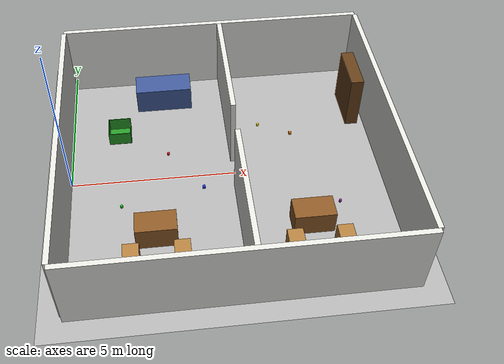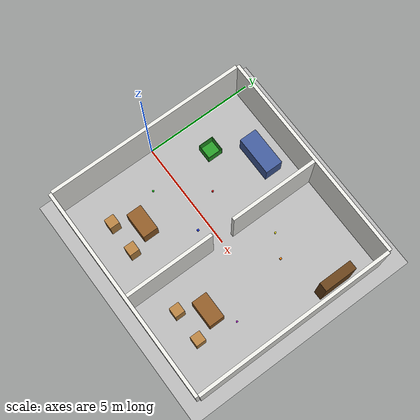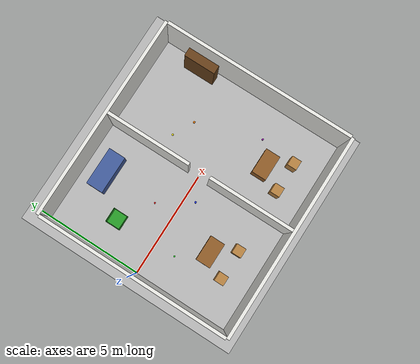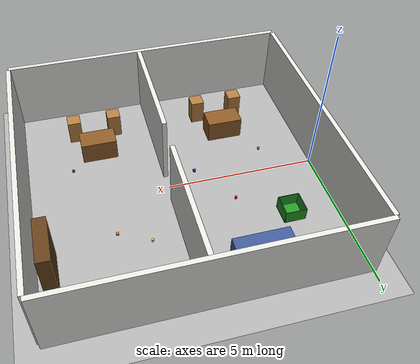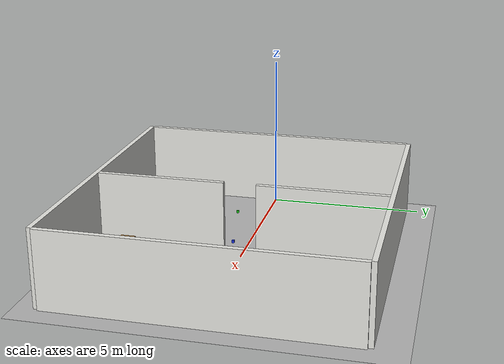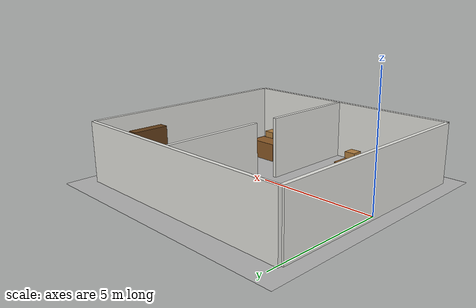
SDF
<?xml version="1.0"?>
<sdf version="1.9">
<world name="home">

  <physics name="4ms" type="ignored">
    <max_step_size>0.004</max_step_size>
    <real_time_factor>1.0</real_time_factor>
    <gravity>0 0 -9.81</gravity>
  </physics>

  <!--
       MANDATORY WORLD PLUGINS
       Filename pattern: "ignition-gazebo-*-system"
       Ignition's plugin loader finds libignition-gazebo6-*-system.so
   -->
  <plugin filename="ignition-gazebo-physics-system"
          name="ignition::gazebo::systems::Physics"/>

  <plugin filename="ignition-gazebo-user-commands-system"
          name="ignition::gazebo::systems::UserCommands"/>

  <plugin filename="ignition-gazebo-scene-broadcaster-system"
          name="ignition::gazebo::systems::SceneBroadcaster"/>

  <!-- SENSORS PLUGIN -->
  <plugin filename="ignition-gazebo-sensors-system"
          name="ignition::gazebo::systems::Sensors">
    <render_engine>ogre2</render_engine>
  </plugin>

  <!-- LIGHTING-->
  <light name="sun" type="directional">
    <cast_shadows>true</cast_shadows>
    <pose>0 0 10 0 0 0</pose>
    <diffuse>0.85 0.85 0.85 1</diffuse>
    <specular>0.2 0.2 0.2 1</specular>
    <direction>-0.5 0.1 -0.9</direction>
  </light>

  <!-- Softer ambient fill light to avoid pitch-black shadows -->
  <light name="ambient_fill" type="directional">
    <cast_shadows>false</cast_shadows>
    <pose>0 0 10 0 0 0</pose>
    <diffuse>0.3 0.3 0.35 1</diffuse>
    <specular>0.0 0.0 0.0 1</specular>
    <direction>0.5 -0.1 -0.5</direction>
  </light>

  <!-- GROUND PLANE
       A static model with plane collision + visual geometry.
       IMPORTANT: We define friction here, not relying on the default-->
  <model name="ground_plane">
    <static>true</static>
    <link name="link">

      <collision name="collision">
        <geometry>
          <!-- A plane is infinite in collision but we give it a visual size -->
          <plane>
            <normal>0 0 1</normal>   <!-- pointing up = horizontal floor -->
            <size>30 30</size>
          </plane>
        </geometry>
        <surface>
          <friction>
            <ode>
              <mu>0.8</mu>
              <mu2>0.8</mu2>
            </ode>
          </friction>
          <contact>
            <ode>
              <!-- Stiffness and damping for the contact model.
                   Without these, objects may bounce or sink into the floor. -->
              <kp>1e6</kp>
              <kd>100.0</kd>
            </ode>
          </contact>
        </surface>
      </collision>

      <visual name="visual">
        <geometry>
          <plane>
            <normal>0 0 1</normal>
            <size>30 30</size>
          </plane>
        </geometry>
        <material>
          <ambient>0.7 0.7 0.7 1</ambient>
          <diffuse>0.7 0.7 0.7 1</diffuse>
        </material>
      </visual>

    </link>
  </model>

  <!-- Reusable wall material -->
  <!-- (SDF doesn't support macros — we repeat the material block.
       In Phase 3 we'll have more walls but the structure is the same.) -->

  <!-- South wall (runs along X axis at y = -4.5) -->
  <model name="wall_south">
    <static>true</static>
    <!-- pose: cx cy cz roll pitch yaw — center of the box -->
    <pose>4.75 -4.575 1.2 0 0 0</pose>
    <link name="link">
      <collision name="collision">
        <geometry><box><size>9.65 0.15 2.4</size></box></geometry>
        <surface><friction><ode><mu>0.6</mu><mu2>0.6</mu2></ode></friction></surface>
      </collision>
      <visual name="visual">
        <geometry><box><size>9.65 0.15 2.4</size></box></geometry>
        <material><ambient>0.9 0.9 0.88 1</ambient><diffuse>0.9 0.9 0.88 1</diffuse></material>
      </visual>
    </link>
  </model>

  <!-- North wall (runs along X axis at y = +4.5) -->
  <model name="wall_north">
    <static>true</static>
    <pose>4.75 4.575 1.2 0 0 0</pose>
    <link name="link">
      <collision name="collision">
        <geometry><box><size>9.65 0.15 2.4</size></box></geometry>
        <surface><friction><ode><mu>0.6</mu><mu2>0.6</mu2></ode></friction></surface>
      </collision>
      <visual name="visual">
        <geometry><box><size>9.65 0.15 2.4</size></box></geometry>
        <material><ambient>0.9 0.9 0.88 1</ambient><diffuse>0.9 0.9 0.88 1</diffuse></material>
      </visual>
    </link>
  </model>

  <!-- West wall (runs along Y axis at x = -0.075) -->
  <model name="wall_west">
    <static>true</static>
    <pose>-0.075 0 1.2 0 0 0</pose>
    <link name="link">
      <collision name="collision">
        <geometry><box><size>0.15 9.0 2.4</size></box></geometry>
        <surface><friction><ode><mu>0.6</mu><mu2>0.6</mu2></ode></friction></surface>
      </collision>
      <visual name="visual">
        <geometry><box><size>0.15 9.0 2.4</size></box></geometry>
        <material><ambient>0.9 0.9 0.88 1</ambient><diffuse>0.9 0.9 0.88 1</diffuse></material>
      </visual>
    </link>
  </model>

  <!-- East wall (runs along Y axis at x = 9.575) -->
  <model name="wall_east">
    <static>true</static>
    <pose>9.575 0 1.2 0 0 0</pose>
    <link name="link">
      <collision name="collision">
        <geometry><box><size>0.15 9.0 2.4</size></box></geometry>
        <surface><friction><ode><mu>0.6</mu><mu2>0.6</mu2></ode></friction></surface>
      </collision>
      <visual name="visual">
        <geometry><box><size>0.15 9.0 2.4</size></box></geometry>
        <material><ambient>0.9 0.9 0.88 1</ambient><diffuse>0.9 0.9 0.88 1</diffuse></material>
      </visual>
    </link>
  </model>

  <model name="divider_south">
    <static>true</static>
    <pose>5.0 -2.5 1.2 0 0 0</pose>
    <link name="link">
      <collision name="collision">
        <geometry><box><size>0.15 4.0 2.4</size></box></geometry>
        <surface><friction><ode><mu>0.6</mu><mu2>0.6</mu2></ode></friction></surface>
      </collision>
      <visual name="visual">
        <geometry><box><size>0.15 4.0 2.4</size></box></geometry>
        <material><ambient>0.9 0.9 0.88 1</ambient><diffuse>0.9 0.9 0.88 1</diffuse></material>
      </visual>
    </link>
  </model>

  <model name="divider_north">
    <static>true</static>
    <pose>5.0 2.5 1.2 0 0 0</pose>
    <link name="link">
      <collision name="collision">
        <geometry><box><size>0.15 4.0 2.4</size></box></geometry>
        <surface><friction><ode><mu>0.6</mu><mu2>0.6</mu2></ode></friction></surface>
      </collision>
      <visual name="visual">
        <geometry><box><size>0.15 4.0 2.4</size></box></geometry>
        <material><ambient>0.9 0.9 0.88 1</ambient><diffuse>0.9 0.9 0.88 1</diffuse></material>
      </visual>
    </link>
  </model>

  <!-- Dining table in south half of Room 1 -->
  <model name="r1_table">
    <static>true</static>
    <pose>2.5 -2.2 0.375 0 0 0</pose>
    <link name="link">
      <collision name="collision">
        <geometry><box><size>1.2 0.7 0.75</size></box></geometry>
      </collision>
      <visual name="visual">
        <geometry><box><size>1.2 0.7 0.75</size></box></geometry>
        <!-- Wood-brown color -->
        <material><ambient>0.55 0.35 0.15 1</ambient><diffuse>0.55 0.35 0.15 1</diffuse></material>
      </visual>
    </link>
  </model>

  <model name="r1_chair_a">
    <static>true</static>
    <pose>1.8 -3.2 0.425 0 0 0</pose>
    <link name="link">
      <collision name="collision">
        <geometry><box><size>0.45 0.45 0.85</size></box></geometry>
      </collision>
      <visual name="visual">
        <geometry><box><size>0.45 0.45 0.85</size></box></geometry>
        <material><ambient>0.7 0.5 0.25 1</ambient><diffuse>0.7 0.5 0.25 1</diffuse></material>
      </visual>
    </link>
  </model>

  <model name="r1_chair_b">
    <static>true</static>
    <pose>3.2 -3.2 0.425 0 0 0</pose>
    <link name="link">
      <collision name="collision">
        <geometry><box><size>0.45 0.45 0.85</size></box></geometry>
      </collision>
      <visual name="visual">
        <geometry><box><size>0.45 0.45 0.85</size></box></geometry>
        <material><ambient>0.7 0.5 0.25 1</ambient><diffuse>0.7 0.5 0.25 1</diffuse></material>
      </visual>
    </link>
  </model>

  <!-- Couch in north half of Room 1 — placed against north wall -->
  <model name="r1_couch">
    <static>true</static>
    <pose>3.0 3.5 0.425 0 0 0</pose>
    <link name="link">
      <collision name="collision">
        <!-- Couch is wide (along X) and shallow (Y), tall (Z) -->
        <geometry><box><size>1.8 0.8 0.85</size></box></geometry>
      </collision>
      <visual name="visual">
        <geometry><box><size>1.8 0.8 0.85</size></box></geometry>
        <!-- Blue-grey upholstery -->
        <material><ambient>0.25 0.35 0.6 1</ambient><diffuse>0.25 0.35 0.6 1</diffuse></material>
      </visual>
    </link>
  </model>

  <model name="r2_table">
    <static>true</static>
    <pose>7.0 -2.2 0.375 0 0 0</pose>
    <link name="link">
      <collision name="collision">
        <geometry><box><size>1.2 0.7 0.75</size></box></geometry>
      </collision>
      <visual name="visual">
        <geometry><box><size>1.2 0.7 0.75</size></box></geometry>
        <material><ambient>0.55 0.35 0.15 1</ambient><diffuse>0.55 0.35 0.15 1</diffuse></material>
      </visual>
    </link>
  </model>

  <model name="r2_chair_a">
    <static>true</static>
    <pose>6.3 -3.2 0.425 0 0 0</pose>
    <link name="link">
      <collision name="collision">
        <geometry><box><size>0.45 0.45 0.85</size></box></geometry>
      </collision>
      <visual name="visual">
        <geometry><box><size>0.45 0.45 0.85</size></box></geometry>
        <material><ambient>0.7 0.5 0.25 1</ambient><diffuse>0.7 0.5 0.25 1</diffuse></material>
      </visual>
    </link>
  </model>

  <model name="r2_chair_b">
    <static>true</static>
    <pose>7.7 -3.2 0.425 0 0 0</pose>
    <link name="link">
      <collision name="collision">
        <geometry><box><size>0.45 0.45 0.85</size></box></geometry>
      </collision>
      <visual name="visual">
        <geometry><box><size>0.45 0.45 0.85</size></box></geometry>
        <material><ambient>0.7 0.5 0.25 1</ambient><diffuse>0.7 0.5 0.25 1</diffuse></material>
      </visual>
    </link>
  </model>

  <!-- Shelf in Room 2 — against the east wall (x ≈ 9.5) -->
  <model name="r2_shelf">
    <static>true</static>
    <!-- x=9.1: shelf east face at 9.1+0.2=9.3, 0.2m from east wall interior face ✓ -->
    <pose>9.1 2.5 0.9 0 0 0</pose>
    <link name="link">
      <collision name="collision">
        <!-- Depth 0.4m (X), Width 1.5m (Y), Height 1.8m (Z) -->
        <geometry><box><size>0.4 1.5 1.8</size></box></geometry>
      </collision>
      <visual name="visual">
        <geometry><box><size>0.4 1.5 1.8</size></box></geometry>
        <!-- Dark wood -->
        <material><ambient>0.4 0.25 0.1 1</ambient><diffuse>0.4 0.25 0.1 1</diffuse></material>
      </visual>
    </link>
  </model>

  <model name="box_floor">
    <static>true</static>
    <pose>1.5 2.0 0.01 0 0 0</pose>
    <link name="link">
      <collision name="collision">
        <geometry><box><size>0.70 0.70 0.02</size></box></geometry>
      </collision>
      <visual name="visual">
        <geometry><box><size>0.70 0.70 0.02</size></box></geometry>
        <material><ambient>0.15 0.6 0.15 1</ambient><diffuse>0.15 0.6 0.15 1</diffuse></material>
      </visual>
    </link>
  </model>

  <model name="box_wall_north">
    <static>true</static>
    <pose>1.5 2.34 0.225 0 0 0</pose>
    <link name="link">
      <collision name="collision">
        <geometry><box><size>0.70 0.02 0.45</size></box></geometry>
      </collision>
      <visual name="visual">
        <geometry><box><size>0.70 0.02 0.45</size></box></geometry>
        <material><ambient>0.15 0.6 0.15 1</ambient><diffuse>0.15 0.6 0.15 1</diffuse></material>
      </visual>
    </link>
  </model>

  <model name="box_wall_south">
    <static>true</static>
    <pose>1.5 1.66 0.225 0 0 0</pose>
    <link name="link">
      <collision name="collision">
        <geometry><box><size>0.70 0.02 0.45</size></box></geometry>
      </collision>
      <visual name="visual">
        <geometry><box><size>0.70 0.02 0.45</size></box></geometry>
        <material><ambient>0.15 0.6 0.15 1</ambient><diffuse>0.15 0.6 0.15 1</diffuse></material>
      </visual>
    </link>
  </model>

  <model name="box_wall_east">
    <static>true</static>
    <pose>1.84 2.0 0.225 0 0 0</pose>
    <link name="link">
      <collision name="collision">
        <geometry><box><size>0.02 0.70 0.45</size></box></geometry>
      </collision>
      <visual name="visual">
        <geometry><box><size>0.02 0.70 0.45</size></box></geometry>
        <material><ambient>0.15 0.6 0.15 1</ambient><diffuse>0.15 0.6 0.15 1</diffuse></material>
      </visual>
    </link>
  </model>

  <model name="box_wall_west">
    <static>true</static>
    <pose>1.16 2.0 0.225 0 0 0</pose>
    <link name="link">
      <collision name="collision">
        <geometry><box><size>0.02 0.70 0.45</size></box></geometry>
      </collision>
      <visual name="visual">
        <geometry><box><size>0.02 0.70 0.45</size></box></geometry>
        <material><ambient>0.15 0.6 0.15 1</ambient><diffuse>0.15 0.6 0.15 1</diffuse></material>
      </visual>
    </link>
  </model>

  <!-- Room 1 objects -->
  <model name="obj_red">
    <pose>3.0 1.0 0.04 0 0 0</pose>
    <link name="link">
      <inertial>
        <mass>0.3</mass>
        <inertia><ixx>0.000280</ixx><iyy>0.000280</iyy><izz>0.000240</izz>
                 <ixy>0</ixy><ixz>0</ixz><iyz>0</iyz></inertia>
      </inertial>
      <collision name="collision">
        <geometry><cylinder><radius>0.04</radius><length>0.08</length></cylinder></geometry>
        <surface>
          <friction><ode><mu>0.5</mu><mu2>0.5</mu2></ode></friction>
          <contact><ode><kp>1e5</kp><kd>10</kd></ode></contact>
        </surface>
      </collision>
      <visual name="visual">
        <geometry><cylinder><radius>0.04</radius><length>0.08</length></cylinder></geometry>
        <material><ambient>0.9 0.1 0.1 1</ambient><diffuse>0.9 0.1 0.1 1</diffuse></material>
      </visual>
    </link>
  </model>

  <model name="obj_green">
    <pose>1.5 -1.0 0.04 0 0 0</pose>
    <link name="link">
      <inertial>
        <mass>0.3</mass>
        <inertia><ixx>0.000280</ixx><iyy>0.000280</iyy><izz>0.000240</izz>
                 <ixy>0</ixy><ixz>0</ixz><iyz>0</iyz></inertia>
      </inertial>
      <collision name="collision">
        <geometry><cylinder><radius>0.04</radius><length>0.08</length></cylinder></geometry>
        <surface>
          <friction><ode><mu>0.5</mu><mu2>0.5</mu2></ode></friction>
          <contact><ode><kp>1e5</kp><kd>10</kd></ode></contact>
        </surface>
      </collision>
      <visual name="visual">
        <geometry><cylinder><radius>0.04</radius><length>0.08</length></cylinder></geometry>
        <material><ambient>0.1 0.8 0.1 1</ambient><diffuse>0.1 0.8 0.1 1</diffuse></material>
      </visual>
    </link>
  </model>

  <!-- Blue box — near doorway approach path -->
  <model name="obj_blue">
    <!-- Box cube: z=0.04 = half of 0.08m side length -->
    <pose>4.0 -0.5 0.04 0 0 0</pose>
    <link name="link">
      <inertial>
        <mass>0.3</mass>
        <inertia><ixx>0.000320</ixx><iyy>0.000320</iyy><izz>0.000320</izz>
                 <ixy>0</ixy><ixz>0</ixz><iyz>0</iyz></inertia>
      </inertial>
      <collision name="collision">
        <geometry><box><size>0.08 0.08 0.08</size></box></geometry>
        <surface>
          <friction><ode><mu>0.5</mu><mu2>0.5</mu2></ode></friction>
          <contact><ode><kp>1e5</kp><kd>10</kd></ode></contact>
        </surface>
      </collision>
      <visual name="visual">
        <geometry><box><size>0.08 0.08 0.08</size></box></geometry>
        <material><ambient>0.1 0.2 0.9 1</ambient><diffuse>0.1 0.2 0.9 1</diffuse></material>
      </visual>
    </link>
  </model>

  <!-- Room 2 objects -->
  <model name="obj_yellow">
    <pose>6.0 2.0 0.04 0 0 0</pose>
    <link name="link">
      <inertial>
        <mass>0.3</mass>
        <inertia><ixx>0.000280</ixx><iyy>0.000280</iyy><izz>0.000240</izz>
                 <ixy>0</ixy><ixz>0</ixz><iyz>0</iyz></inertia>
      </inertial>
      <collision name="collision">
        <geometry><cylinder><radius>0.04</radius><length>0.08</length></cylinder></geometry>
        <surface>
          <friction><ode><mu>0.5</mu><mu2>0.5</mu2></ode></friction>
          <contact><ode><kp>1e5</kp><kd>10</kd></ode></contact>
        </surface>
      </collision>
      <visual name="visual">
        <geometry><cylinder><radius>0.04</radius><length>0.08</length></cylinder></geometry>
        <material><ambient>0.9 0.85 0.1 1</ambient><diffuse>0.9 0.85 0.1 1</diffuse></material>
      </visual>
    </link>
  </model>

  <model name="obj_purple">
    <pose>8.0 -1.5 0.04 0 0 0</pose>
    <link name="link">
      <inertial>
        <mass>0.3</mass>
        <inertia><ixx>0.000280</ixx><iyy>0.000280</iyy><izz>0.000240</izz>
                 <ixy>0</ixy><ixz>0</ixz><iyz>0</iyz></inertia>
      </inertial>
      <collision name="collision">
        <geometry><cylinder><radius>0.04</radius><length>0.08</length></cylinder></geometry>
        <surface>
          <friction><ode><mu>0.5</mu><mu2>0.5</mu2></ode></friction>
          <contact><ode><kp>1e5</kp><kd>10</kd></ode></contact>
        </surface>
      </collision>
      <visual name="visual">
        <geometry><cylinder><radius>0.04</radius><length>0.08</length></cylinder></geometry>
        <material><ambient>0.6 0.1 0.7 1</ambient><diffuse>0.6 0.1 0.7 1</diffuse></material>
      </visual>
    </link>
  </model>

  <!-- Orange box — Room 2 north area -->
  <model name="obj_orange">
    <pose>7.0 1.5 0.04 0 0 0</pose>
    <link name="link">
      <inertial>
        <mass>0.3</mass>
        <inertia><ixx>0.000320</ixx><iyy>0.000320</iyy><izz>0.000320</izz>
                 <ixy>0</ixy><ixz>0</ixz><iyz>0</iyz></inertia>
      </inertial>
      <collision name="collision">
        <geometry><box><size>0.08 0.08 0.08</size></box></geometry>
        <surface>
          <friction><ode><mu>0.5</mu><mu2>0.5</mu2></ode></friction>
          <contact><ode><kp>1e5</kp><kd>10</kd></ode></contact>
        </surface>
      </collision>
      <visual name="visual">
        <geometry><box><size>0.08 0.08 0.08</size></box></geometry>
        <material><ambient>0.95 0.5 0.05 1</ambient><diffuse>0.95 0.5 0.05 1</diffuse></material>
      </visual>
    </link>
  </model>

</world>
</sdf>
